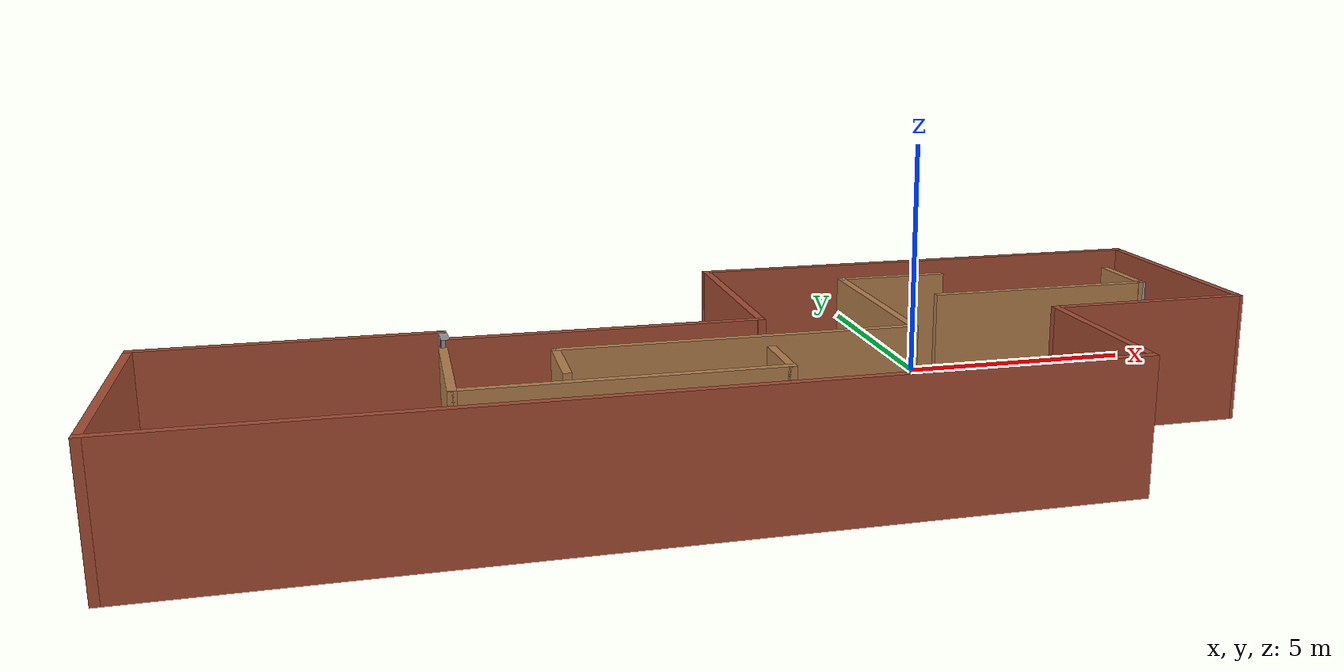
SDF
<?xml version='1.0'?>
<sdf version='1.7'>
  <model name='simulation_map1108'>
    <pose>-5.26984 -4.02418 0 0 -0 0</pose>
    <link name='Wall_0'>
      <collision name='Wall_0_Collision'>
        <geometry>
          <box>
            <size>4.20826 0.15 2.5</size>
          </box>
        </geometry>
        <pose>0 0 1.25 0 -0 0</pose>
      </collision>
      <visual name='Wall_0_Visual'>
        <pose>0 0 1.25 0 -0 0</pose>
        <geometry>
          <box>
            <size>4.20826 0.15 2.5</size>
          </box>
        </geometry>
        <material>
          <script>
            <uri>file://media/materials/scripts/gazebo.material</uri>
            <name>Gazebo/Bricks</name>
          </script>
          <ambient>1 1 1 1</ambient>
        </material>
        <meta>
          <layer>0</layer>
        </meta>
      </visual>
      <pose>0.611053 1.91327 0 0 -0 1.57727</pose>
    </link>
    <link name='Wall_1'>
      <collision name='Wall_1_Collision'>
        <geometry>
          <box>
            <size>9.66194 0.15 2.5</size>
          </box>
        </geometry>
        <pose>0 0 1.25 0 -0 0</pose>
      </collision>
      <visual name='Wall_1_Visual'>
        <pose>0 0 1.25 0 -0 0</pose>
        <geometry>
          <box>
            <size>9.66194 0.15 2.5</size>
          </box>
        </geometry>
        <material>
          <script>
            <uri>file://media/materials/scripts/gazebo.material</uri>
            <name>Gazebo/Bricks</name>
          </script>
          <ambient>1 1 1 1</ambient>
        </material>
        <meta>
          <layer>0</layer>
        </meta>
      </visual>
      <pose>5.34388 3.95392 0 0 -0 0.002432</pose>
    </link>
    <link name='Wall_10'>
      <collision name='Wall_10_Collision'>
        <geometry>
          <box>
            <size>5.75 0.15 2.5</size>
          </box>
        </geometry>
        <pose>0 0 1.25 0 -0 0</pose>
      </collision>
      <visual name='Wall_10_Visual'>
        <pose>0 0 1.25 0 -0 0</pose>
        <geometry>
          <box>
            <size>5.75 0.15 2.5</size>
          </box>
        </geometry>
        <material>
          <script>
            <uri>file://media/materials/scripts/gazebo.material</uri>
            <name>Gazebo/Bricks</name>
          </script>
          <ambient>1 1 1 1</ambient>
        </material>
        <meta>
          <layer>0</layer>
        </meta>
      </visual>
      <pose>-2.19238 -0.106322 0 0 -0 0</pose>
    </link>
    <link name='Wall_14'>
      <collision name='Wall_14_Collision'>
        <geometry>
          <box>
            <size>2.5 0.15 2.5</size>
          </box>
        </geometry>
        <pose>0 0 1.25 0 -0 0</pose>
      </collision>
      <visual name='Wall_14_Visual'>
        <pose>0 0 1.25 0 -0 0</pose>
        <geometry>
          <box>
            <size>2.5 0.15 2.5</size>
          </box>
        </geometry>
        <material>
          <script>
            <uri>file://media/materials/scripts/gazebo.material</uri>
            <name>Gazebo/Wood</name>
          </script>
          <ambient>1 1 1 1</ambient>
        </material>
        <meta>
          <layer>0</layer>
        </meta>
      </visual>
      <pose>-5.04686 -1.9242 0 0 -0 -1.5708</pose>
    </link>
    <link name='Wall_15'>
      <collision name='Wall_15_Collision'>
        <geometry>
          <box>
            <size>5.5 0.15 2.5</size>
          </box>
        </geometry>
        <pose>0 0 1.25 0 -0 0</pose>
      </collision>
      <visual name='Wall_15_Visual'>
        <pose>0 0 1.25 0 -0 0</pose>
        <geometry>
          <box>
            <size>5.5 0.15 2.5</size>
          </box>
        </geometry>
        <material>
          <script>
            <uri>file://media/materials/scripts/gazebo.material</uri>
            <name>Gazebo/Wood</name>
          </script>
          <ambient>1 1 1 1</ambient>
        </material>
        <meta>
          <layer>0</layer>
        </meta>
      </visual>
      <pose>-2.37186 -3.0992 0 0 -0 0</pose>
    </link>
    <link name='Wall_16'>
      <collision name='Wall_16_Collision'>
        <geometry>
          <box>
            <size>1.25 0.15 2.5</size>
          </box>
        </geometry>
        <pose>0 0 1.25 0 -0 0</pose>
      </collision>
      <visual name='Wall_16_Visual'>
        <pose>0 0 1.25 0 -0 0</pose>
        <geometry>
          <box>
            <size>1.25 0.15 2.5</size>
          </box>
        </geometry>
        <material>
          <script>
            <uri>file://media/materials/scripts/gazebo.material</uri>
            <name>Gazebo/Wood</name>
          </script>
          <ambient>1 1 1 1</ambient>
        </material>
        <meta>
          <layer>0</layer>
        </meta>
      </visual>
      <pose>0.303141 -2.5492 0 0 -0 1.5708</pose>
    </link>
    <link name='Wall_18'>
      <collision name='Wall_18_Collision'>
        <geometry>
          <box>
            <size>1.5 0.15 2.5</size>
          </box>
        </geometry>
        <pose>0 0 1.25 0 -0 0</pose>
      </collision>
      <visual name='Wall_18_Visual'>
        <pose>0 0 1.25 0 -0 0</pose>
        <geometry>
          <box>
            <size>1.5 0.15 2.5</size>
          </box>
        </geometry>
        <material>
          <script>
            <uri>file://media/materials/scripts/gazebo.material</uri>
            <name>Gazebo/Wood</name>
          </script>
          <ambient>1 1 1 1</ambient>
        </material>
        <meta>
          <layer>0</layer>
        </meta>
      </visual>
      <pose>-3.23664 -1.90453 0 0 -0 1.5708</pose>
    </link>
    <link name='Wall_19'>
      <collision name='Wall_19_Collision'>
        <geometry>
          <box>
            <size>6.5 0.15 2.5</size>
          </box>
        </geometry>
        <pose>0 0 1.25 0 -0 0</pose>
      </collision>
      <visual name='Wall_19_Visual'>
        <pose>0 0 1.25 0 -0 0</pose>
        <geometry>
          <box>
            <size>6.5 0.15 2.5</size>
          </box>
        </geometry>
        <material>
          <script>
            <uri>file://media/materials/scripts/gazebo.material</uri>
            <name>Gazebo/Wood</name>
          </script>
          <ambient>1 1 1 1</ambient>
        </material>
        <meta>
          <layer>0</layer>
        </meta>
      </visual>
      <pose>-0.061637 -1.22954 0 0 -0 0</pose>
    </link>
    <link name='Wall_2'>
      <collision name='Wall_2_Collision'>
        <geometry>
          <box>
            <size>4.73135 0.15 2.5</size>
          </box>
        </geometry>
        <pose>0 0 1.25 0 -0 0</pose>
      </collision>
      <visual name='Wall_2_Visual'>
        <pose>0 0 1.25 0 -0 0</pose>
        <geometry>
          <box>
            <size>4.73135 0.15 2.5</size>
          </box>
        </geometry>
        <material>
          <script>
            <uri>file://media/materials/scripts/gazebo.material</uri>
            <name>Gazebo/Bricks</name>
          </script>
          <ambient>1 1 1 1</ambient>
        </material>
        <meta>
          <layer>0</layer>
        </meta>
      </visual>
      <pose>10.0998 1.67484 0 0 -0 -1.57516</pose>
    </link>
    <link name='Wall_20'>
      <collision name='Wall_20_Collision'>
        <geometry>
          <box>
            <size>4 0.15 2.5</size>
          </box>
        </geometry>
        <pose>0 0 1.25 0 -0 0</pose>
      </collision>
      <visual name='Wall_20_Visual'>
        <pose>0 0 1.25 0 -0 0</pose>
        <geometry>
          <box>
            <size>4 0.15 2.5</size>
          </box>
        </geometry>
        <material>
          <script>
            <uri>file://media/materials/scripts/gazebo.material</uri>
            <name>Gazebo/Wood</name>
          </script>
          <ambient>1 1 1 1</ambient>
        </material>
        <meta>
          <layer>0</layer>
        </meta>
      </visual>
      <pose>3.11336 0.695466 0 0 -0 1.5708</pose>
    </link>
    <link name='Wall_21'>
      <collision name='Wall_21_Collision'>
        <geometry>
          <box>
            <size>0.16 0.15 2.5</size>
          </box>
        </geometry>
        <pose>0 0 1.25 0 -0 0</pose>
      </collision>
      <visual name='Wall_21_Visual'>
        <pose>0 0 1.25 0 -0 0</pose>
        <geometry>
          <box>
            <size>0.16 0.15 2.5</size>
          </box>
        </geometry>
        <material>
          <script>
            <uri>file://media/materials/scripts/gazebo.material</uri>
            <name>Gazebo/Grey</name>
          </script>
          <ambient>1 1 1 1</ambient>
        </material>
        <meta>
          <layer>0</layer>
        </meta>
      </visual>
      <pose>3.11836 2.62047 0 0 -0 0</pose>
    </link>
    <link name='Wall_22'>
      <collision name='Wall_22_Collision'>
        <geometry>
          <box>
            <size>2.25 0.15 2.5</size>
          </box>
        </geometry>
        <pose>0 0 1.25 0 -0 0</pose>
      </collision>
      <visual name='Wall_22_Visual'>
        <pose>0 0 1.25 0 -0 0</pose>
        <geometry>
          <box>
            <size>2.25 0.15 2.5</size>
          </box>
        </geometry>
        <material>
          <script>
            <uri>file://media/materials/scripts/gazebo.material</uri>
            <name>Gazebo/Wood</name>
          </script>
          <ambient>1 1 1 1</ambient>
        </material>
        <meta>
          <layer>0</layer>
        </meta>
      </visual>
      <pose>4.17336 2.62047 0 0 -0 0</pose>
    </link>
    <link name='Wall_24'>
      <collision name='Wall_24_Collision'>
        <geometry>
          <box>
            <size>4.5 0.15 2.5</size>
          </box>
        </geometry>
        <pose>0 0 1.25 0 -0 0</pose>
      </collision>
      <visual name='Wall_24_Visual'>
        <pose>0 0 1.25 0 -0 0</pose>
        <geometry>
          <box>
            <size>4.5 0.15 2.5</size>
          </box>
        </geometry>
        <material>
          <script>
            <uri>file://media/materials/scripts/gazebo.material</uri>
            <name>Gazebo/Wood</name>
          </script>
          <ambient>1 1 1 1</ambient>
        </material>
        <meta>
          <layer>0</layer>
        </meta>
      </visual>
      <pose>6.68209 0.88 0 0 -0 0</pose>
    </link>
    <link name='Wall_25'>
      <collision name='Wall_25_Collision'>
        <geometry>
          <box>
            <size>0.16 0.15 2.5</size>
          </box>
        </geometry>
        <pose>0 0 1.25 0 -0 0</pose>
      </collision>
      <visual name='Wall_25_Visual'>
        <pose>0 0 1.25 0 -0 0</pose>
        <geometry>
          <box>
            <size>0.16 0.15 2.5</size>
          </box>
        </geometry>
        <material>
          <script>
            <uri>file://media/materials/scripts/gazebo.material</uri>
            <name>Gazebo/Grey</name>
          </script>
          <ambient>1 1 1 1</ambient>
        </material>
        <meta>
          <layer>0</layer>
        </meta>
      </visual>
      <pose>8.86209 0.88 0 0 -0 0</pose>
    </link>
    <link name='Wall_26'>
      <collision name='Wall_26_Collision'>
        <geometry>
          <box>
            <size>1.5 0.15 2.5</size>
          </box>
        </geometry>
        <pose>0 0 1.25 0 -0 0</pose>
      </collision>
      <visual name='Wall_26_Visual'>
        <pose>0 0 1.25 0 -0 0</pose>
        <geometry>
          <box>
            <size>1.5 0.15 2.5</size>
          </box>
        </geometry>
        <material>
          <script>
            <uri>file://media/materials/scripts/gazebo.material</uri>
            <name>Gazebo/Wood</name>
          </script>
          <ambient>1 1 1 1</ambient>
        </material>
        <meta>
          <layer>0</layer>
        </meta>
      </visual>
      <pose>8.86709 1.555 0 0 -0 1.5708</pose>
    </link>
    <link name='Wall_3'>
      <collision name='Wall_3_Collision'>
        <geometry>
          <box>
            <size>4 0.15 2.5</size>
          </box>
        </geometry>
        <pose>0 0 1.25 0 -0 0</pose>
      </collision>
      <visual name='Wall_3_Visual'>
        <pose>0 0 1.25 0 -0 0</pose>
        <geometry>
          <box>
            <size>4 0.15 2.5</size>
          </box>
        </geometry>
        <material>
          <script>
            <uri>file://media/materials/scripts/gazebo.material</uri>
            <name>Gazebo/Bricks</name>
          </script>
          <ambient>1 1 1 1</ambient>
        </material>
        <meta>
          <layer>0</layer>
        </meta>
      </visual>
      <pose>8.16484 -0.615816 0 0 -0 3.14159</pose>
    </link>
    <link name='Wall_4'>
      <collision name='Wall_4_Collision'>
        <geometry>
          <box>
            <size>3.5 0.15 2.5</size>
          </box>
        </geometry>
        <pose>0 0 1.25 0 -0 0</pose>
      </collision>
      <visual name='Wall_4_Visual'>
        <pose>0 0 1.25 0 -0 0</pose>
        <geometry>
          <box>
            <size>3.5 0.15 2.5</size>
          </box>
        </geometry>
        <material>
          <script>
            <uri>file://media/materials/scripts/gazebo.material</uri>
            <name>Gazebo/Bricks</name>
          </script>
          <ambient>1 1 1 1</ambient>
        </material>
        <meta>
          <layer>0</layer>
        </meta>
      </visual>
      <pose>6.23984 -2.29082 0 0 -0 -1.5708</pose>
    </link>
    <link name='Wall_5'>
      <collision name='Wall_5_Collision'>
        <geometry>
          <box>
            <size>16.5 0.15 2.5</size>
          </box>
        </geometry>
        <pose>0 0 1.25 0 -0 0</pose>
      </collision>
      <visual name='Wall_5_Visual'>
        <pose>0 0 1.25 0 -0 0</pose>
        <geometry>
          <box>
            <size>16.5 0.15 2.5</size>
          </box>
        </geometry>
        <material>
          <script>
            <uri>file://media/materials/scripts/gazebo.material</uri>
            <name>Gazebo/Bricks</name>
          </script>
          <ambient>1 1 1 1</ambient>
        </material>
        <meta>
          <layer>0</layer>
        </meta>
      </visual>
      <pose>-1.93516 -3.96582 0 0 -0 3.14159</pose>
    </link>
    <link name='Wall_6'>
      <collision name='Wall_6_Collision'>
        <geometry>
          <box>
            <size>4.5 0.15 2.5</size>
          </box>
        </geometry>
        <pose>0 0 1.25 0 -0 0</pose>
      </collision>
      <visual name='Wall_6_Visual'>
        <pose>0 0 1.25 0 -0 0</pose>
        <geometry>
          <box>
            <size>4.5 0.15 2.5</size>
          </box>
        </geometry>
        <material>
          <script>
            <uri>file://media/materials/scripts/gazebo.material</uri>
            <name>Gazebo/Bricks</name>
          </script>
          <ambient>1 1 1 1</ambient>
        </material>
        <meta>
          <layer>0</layer>
        </meta>
      </visual>
      <pose>-10.1102 -1.79082 0 0 -0 1.5708</pose>
    </link>
    <link name='Wall_7'>
      <collision name='Wall_7_Collision'>
        <geometry>
          <box>
            <size>0.15 0.15 2.5</size>
          </box>
        </geometry>
        <pose>0 0 1.25 0 -0 0</pose>
      </collision>
      <visual name='Wall_7_Visual'>
        <pose>0 0 1.25 0 -0 0</pose>
        <geometry>
          <box>
            <size>0.15 0.15 2.5</size>
          </box>
        </geometry>
        <material>
          <script>
            <uri>file://media/materials/scripts/gazebo.material</uri>
            <name>Gazebo/Grey</name>
          </script>
          <ambient>1 1 1 1</ambient>
        </material>
        <meta>
          <layer>0</layer>
        </meta>
      </visual>
      <pose>-10.1102 0.384184 0 0 -0 0</pose>
    </link>
    <link name='Wall_8'>
      <collision name='Wall_8_Collision'>
        <geometry>
          <box>
            <size>5.25 0.15 2.5</size>
          </box>
        </geometry>
        <pose>0 0 1.25 0 -0 0</pose>
      </collision>
      <visual name='Wall_8_Visual'>
        <pose>0 0 1.25 0 -0 0</pose>
        <geometry>
          <box>
            <size>5.25 0.15 2.5</size>
          </box>
        </geometry>
        <material>
          <script>
            <uri>file://media/materials/scripts/gazebo.material</uri>
            <name>Gazebo/Bricks</name>
          </script>
          <ambient>1 1 1 1</ambient>
        </material>
        <meta>
          <layer>0</layer>
        </meta>
      </visual>
      <pose>-7.56016 0.384184 0 0 -0 0</pose>
    </link>
    <link name='Wall_9'>
      <collision name='Wall_9_Collision'>
        <geometry>
          <box>
            <size>0.640511 0.15 2.5</size>
          </box>
        </geometry>
        <pose>0 0 1.25 0 -0 0</pose>
      </collision>
      <visual name='Wall_9_Visual'>
        <pose>0 0 1.25 0 -0 0</pose>
        <geometry>
          <box>
            <size>0.640511 0.15 2.5</size>
          </box>
        </geometry>
        <material>
          <script>
            <uri>file://media/materials/scripts/gazebo.material</uri>
            <name>Gazebo/Grey</name>
          </script>
          <ambient>1 1 1 1</ambient>
        </material>
        <meta>
          <layer>0</layer>
        </meta>
      </visual>
      <pose>-4.99627 0.138931 0 0 -0 -1.51421</pose>
    </link>
    <static>1</static>
  </model>
</sdf>
